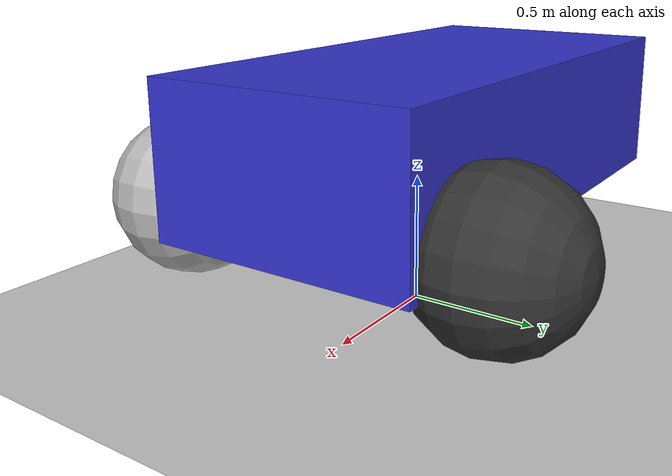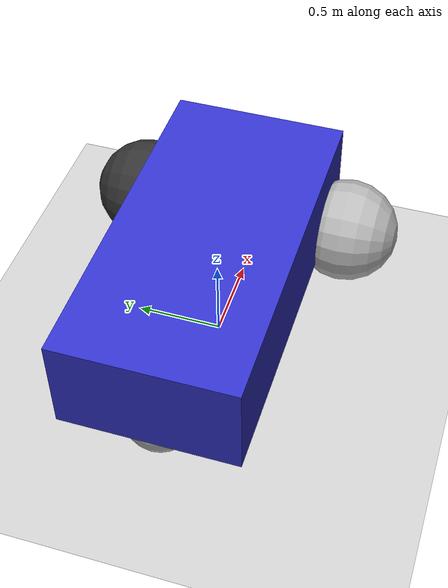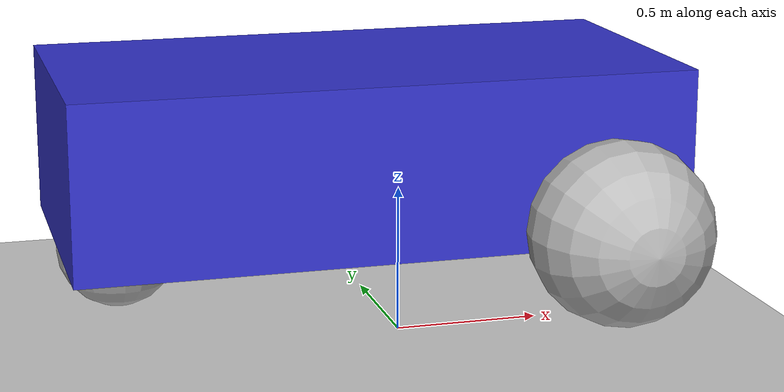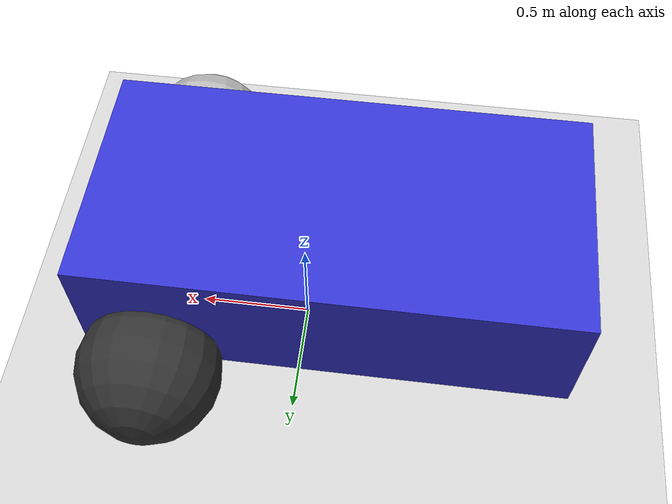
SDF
<?xml version="1.0"?>
<sdf version="1.8">
  <world name="default">

    <!-- Essential world plugins for Gazebo Harmonic -->
    <plugin filename="gz-sim-physics-system" name="gz::sim::systems::Physics">
    </plugin>
    <plugin filename="gz-sim-user-commands-system" name="gz::sim::systems::UserCommands">
    </plugin>
    <plugin filename="gz-sim-scene-broadcaster-system" name="gz::sim::systems::SceneBroadcaster">
    </plugin>

    <!-- ROS2 bridge must be run as separate node, not as Gazebo plugin
         See instructions below for running ros_gz_bridge -->

    <!-- Basic ground plane -->
    <model name='ground_plane'>
      <static>true</static>
      <link name='link'>
        <collision name='collision'>
          <geometry>
            <plane>
              <normal>0 0 1</normal>
              <size>100 100</size>
            </plane>
          </geometry>
        </collision>
        <visual name='visual'>
          <geometry>
            <plane>
              <normal>0 0 1</normal>
              <size>100 100</size>
            </plane>
          </geometry>
          <material>
            <ambient>0.8 0.8 0.8 1</ambient>
            <diffuse>0.8 0.8 0.8 1</diffuse>
          </material>
        </visual>
      </link>
    </model>

    <!-- Basic lighting -->
    <light type="directional" name="sun">
      <cast_shadows>true</cast_shadows>
      <pose>0 0 10 0 0 0</pose>
      <diffuse>0.8 0.8 0.8 1</diffuse>
      <specular>0.2 0.2 0.2 1</specular>
      <attenuation>
        <range>1000</range>
        <constant>0.9</constant>
        <linear>0.01</linear>
        <quadratic>0.001</quadratic>
      </attenuation>
      <direction>-0.5 0.1 -0.9</direction>
    </light>

    <model name='vehicle'>
      <pose>0 0 0.5 0 0 0</pose>

      <link name='chassis'>
        <pose>-0.151427 -0 0.175 0 -0 0</pose>
        <inertial>
          <mass>1.14395</mass>
          <inertia>
            <ixx>0.126164</ixx>
            <ixy>0</ixy>
            <ixz>0</ixz>
            <iyy>0.416519</iyy>
            <iyz>0</iyz>
            <izz>0.481014</izz>
          </inertia>
        </inertial>
        <visual name='visual'>
          <geometry>
            <box>
              <size>2.01142 1 0.568726</size>
            </box>
          </geometry>
          <material>
            <ambient>0.2 0.2 0.8 1</ambient>
            <diffuse>0.2 0.2 0.8 1</diffuse>
            <specular>0.1 0.1 0.3 1</specular>
          </material>
        </visual>
        <collision name='collision'>
          <geometry>
            <box>
              <size>2.01142 1 0.568726</size>
            </box>
          </geometry>
        </collision>
      </link>

      <link name='left_wheel'>
        <pose>0.554283 0.625029 -0.025 -1.5707 0 0</pose>
        <inertial>
          <mass>2</mass>
          <inertia>
            <ixx>0.145833</ixx>
            <ixy>0</ixy>
            <ixz>0</ixz>
            <iyy>0.145833</iyy>
            <iyz>0</iyz>
            <izz>0.125</izz>
          </inertia>
        </inertial>
        <visual name='visual'>
          <geometry>
            <sphere>
              <radius>0.3</radius>
            </sphere>
          </geometry>
          <material>
            <ambient>0.1 0.1 0.1 1</ambient>
            <diffuse>0.2 0.2 0.2 1</diffuse>
            <specular>0.4 0.4 0.4 1</specular>
          </material>
        </visual>
        <collision name='collision'>
          <geometry>
            <sphere>
              <radius>0.3</radius>
            </sphere>
          </geometry>
          <surface>
            <friction>
              <ode>
                <mu>1</mu>
                <mu2>1</mu2>
                <slip1>0</slip1>
                <slip2>0</slip2>
              </ode>
            </friction>
            <contact>
              <ode>
                <soft_cfm>0</soft_cfm>
                <soft_erp>0.2</soft_erp>
                <kp>1e+13</kp>
                <kd>1</kd>
                <max_vel>0.01</max_vel>
                <min_depth>0.01</min_depth>
              </ode>
            </contact>
          </surface>
        </collision>
      </link>

      <link name='right_wheel'>
        <pose>0.554282 -0.625029 -0.025 -1.5707 0 0</pose>
        <inertial>
          <mass>2</mass>
          <inertia>
            <ixx>0.145833</ixx>
            <ixy>0</ixy>
            <ixz>0</ixz>
            <iyy>0.145833</iyy>
            <iyz>0</iyz>
            <izz>0.125</izz>
          </inertia>
        </inertial>
        <visual name='visual'>
          <geometry>
            <sphere>
              <radius>0.3</radius>
            </sphere>
          </geometry>
        </visual>
        <collision name='collision'>
          <geometry>
            <sphere>
              <radius>0.3</radius>
            </sphere>
          </geometry>
          <surface>
            <friction>
              <ode>
                <mu>1</mu>
                <mu2>1</mu2>
                <slip1>0</slip1>
                <slip2>0</slip2>
              </ode>
            </friction>
            <contact>
              <ode>
                <soft_cfm>0</soft_cfm>
                <soft_erp>0.2</soft_erp>
                <kp>1e+13</kp>
                <kd>1</kd>
                <max_vel>0.01</max_vel>
                <min_depth>0.01</min_depth>
              </ode>
            </contact>
          </surface>
        </collision>
      </link>

      <link name='caster'>
        <pose>-0.957138 -0 -0.125 0 -0 0</pose>
        <inertial>
          <mass>1</mass>
          <inertia>
            <ixx>0.1</ixx>
            <ixy>0</ixy>
            <ixz>0</ixz>
            <iyy>0.1</iyy>
            <iyz>0</iyz>
            <izz>0.1</izz>
          </inertia>
        </inertial>
        <visual name='visual'>
          <geometry>
            <sphere>
              <radius>0.2</radius>
            </sphere>
          </geometry>
        </visual>
        <collision name='collision'>
          <geometry>
            <sphere>
              <radius>0.2</radius>
            </sphere>
          </geometry>
        </collision>
      </link>

      <joint name='left_wheel_joint' type='revolute'>
        <parent>chassis</parent>
        <child>left_wheel</child>
        <axis>
          <xyz>0 0 1</xyz>
          <limit>
            <lower>-1.79769e+308</lower>
            <upper>1.79769e+308</upper>
          </limit>
        </axis>
      </joint>

      <joint name='right_wheel_joint' type='revolute'>
        <parent>chassis</parent>
        <child>right_wheel</child>
        <axis>
          <xyz>0 0 1</xyz>
          <limit>
            <lower>-1.79769e+308</lower>
            <upper>1.79769e+308</upper>
          </limit>
        </axis>
      </joint>

      <joint name='caster_wheel' type='ball'>
        <parent>chassis</parent>
        <child>caster</child>
      </joint>

      <!-- Gazebo Harmonic native diff_drive plugin -->
      <plugin filename="gz-sim-diff-drive-system" name="gz::sim::systems::DiffDrive">
        <left_joint>left_wheel_joint</left_joint>
        <right_joint>right_wheel_joint</right_joint>
        <wheel_separation>1.25</wheel_separation>
        <wheel_radius>0.3</wheel_radius>
        <odom_publish_frequency>1</odom_publish_frequency>
        <topic>cmd_vel</topic>
        <odom_topic>odometry</odom_topic>
        <frame_id>odom</frame_id>
        <child_frame_id>chassis</child_frame_id>
        <max_linear_acceleration>1</max_linear_acceleration>
        <min_linear_acceleration>-1</min_linear_acceleration>
        <max_angular_acceleration>2</max_angular_acceleration>
        <min_angular_acceleration>-2</min_angular_acceleration>
        <max_linear_velocity>0.5</max_linear_velocity>
        <min_linear_velocity>-0.5</min_linear_velocity>
        <max_angular_velocity>1</max_angular_velocity>
        <min_angular_velocity>-1</min_angular_velocity>
      </plugin>

    </model>

    <plugin name="ns3_gazebo_world::NS3GazeboWorld" filename="libns3_gazebo_world.so"/>

  </world>
</sdf>
